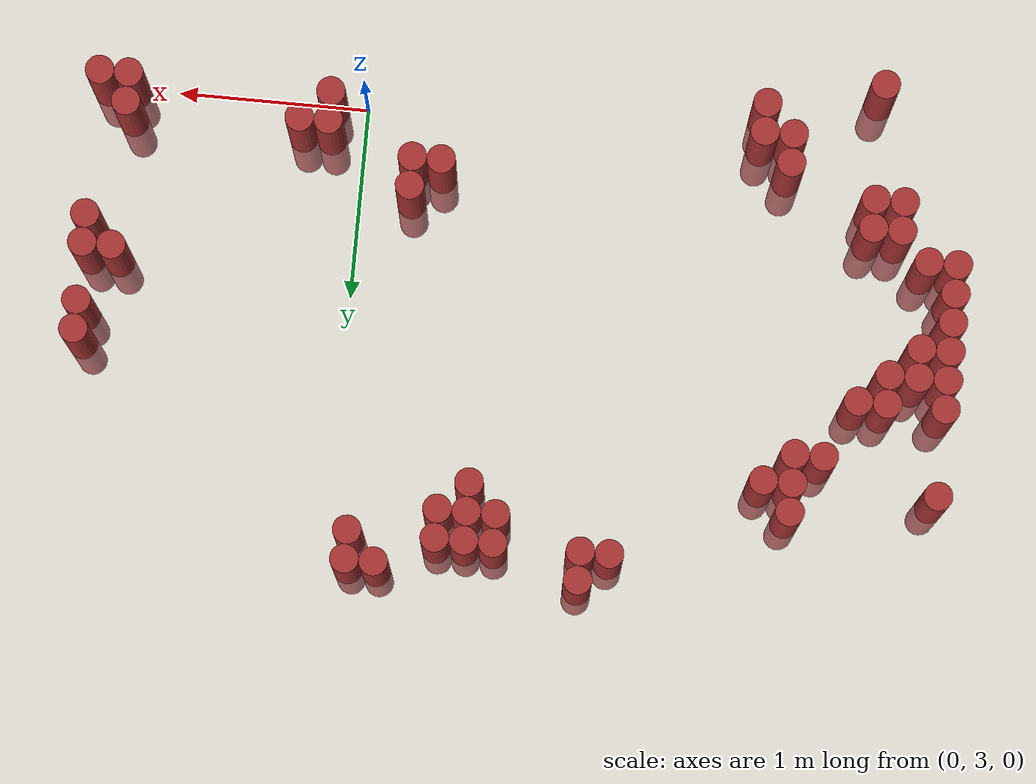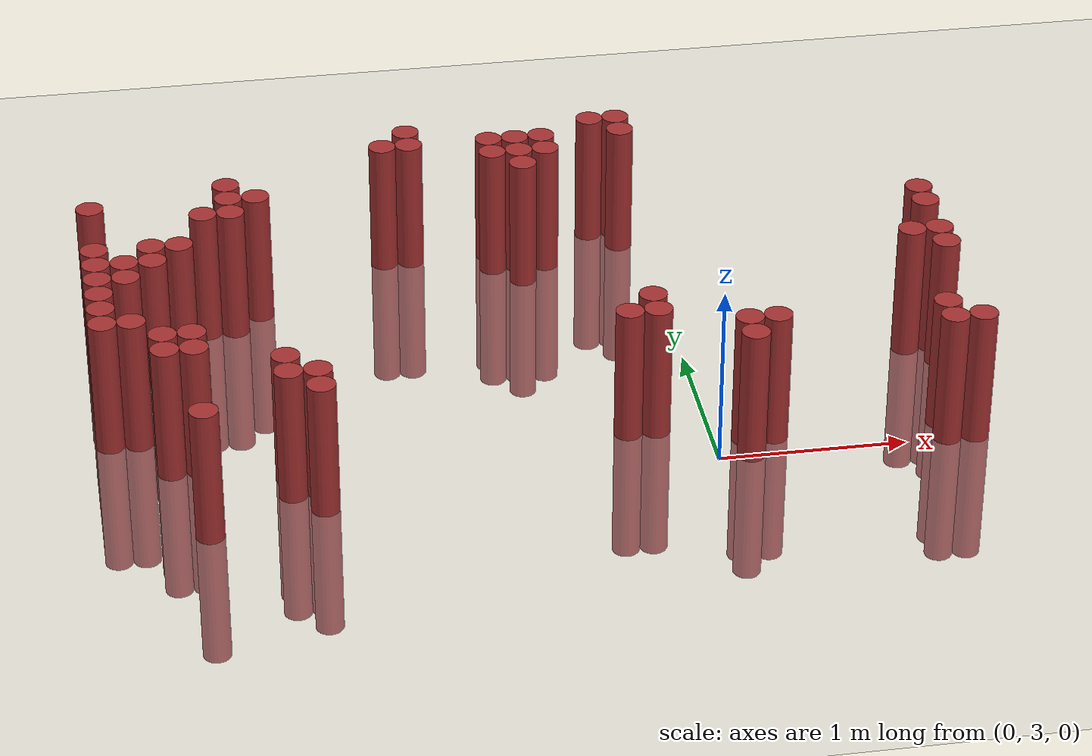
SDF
<sdf version="1.6">
 <world name="default">
  <model name="ground_plane">
   <static>1</static>
   <link name="link">
    <collision name="collision">
     <geometry><plane><normal>0 0 1</normal><size>100 100</size></plane></geometry>
     <surface><friction><ode><mu>100</mu><mu2>50</mu2></ode></friction></surface>
    </collision>
    <visual name="visual">
     <cast_shadows>0</cast_shadows>
     <geometry><plane><normal>0 0 1</normal><size>100 100</size></plane></geometry>
     <material>
      <script><uri>file://media/materials/scripts/gazebo.material</uri><name>Gazebo/Grey</name></script>
     </material>
    </visual>
   </link>
  </model>
  <model name="unit_cylinder_282">
   <static>1</static>
   <pose>-3.125000 3.625000 0.000000 0.000000 0.000000 0.000000</pose>
   <link name="link">
    <inertial>
     <mass>1</mass>
     <inertia><ixx>0.145833</ixx><ixy>0</ixy><ixz>0</ixz><iyy>0.145833</iyy><iyz>0</iyz><izz>0.125</izz></inertia>
    </inertial>
    <collision name="collision">
     <geometry><cylinder><radius>0.075000</radius><length>1.5</length></cylinder></geometry>
    </collision>
    <visual name="visual">
     <geometry><cylinder><radius>0.075000</radius><length>1.5</length></cylinder></geometry>
     <material>
      <ambient>0.648000 0.192000 0.192000 1</ambient>
      <diffuse>0.648000 0.192000 0.192000 1</diffuse>
     </material>
     <material>
      <script><name>Gazebo/Grey</name><uri>file://media/materials/scripts/gazebo.material</uri></script>
     </material>
    </visual>
   </link>
  </model>
  <model name="unit_cylinder_283">
   <static>1</static>
   <pose>-3.125000 3.775000 0.000000 0.000000 0.000000 0.000000</pose>
   <link name="link">
    <inertial>
     <mass>1</mass>
     <inertia><ixx>0.145833</ixx><ixy>0</ixy><ixz>0</ixz><iyy>0.145833</iyy><iyz>0</iyz><izz>0.125</izz></inertia>
    </inertial>
    <collision name="collision">
     <geometry><cylinder><radius>0.075000</radius><length>1.5</length></cylinder></geometry>
    </collision>
    <visual name="visual">
     <geometry><cylinder><radius>0.075000</radius><length>1.5</length></cylinder></geometry>
     <material>
      <ambient>0.648000 0.192000 0.192000 1</ambient>
      <diffuse>0.648000 0.192000 0.192000 1</diffuse>
     </material>
     <material>
      <script><name>Gazebo/Grey</name><uri>file://media/materials/scripts/gazebo.material</uri></script>
     </material>
    </visual>
   </link>
  </model>
  <model name="unit_cylinder_284">
   <static>1</static>
   <pose>-3.125000 3.925000 0.000000 0.000000 0.000000 0.000000</pose>
   <link name="link">
    <inertial>
     <mass>1</mass>
     <inertia><ixx>0.145833</ixx><ixy>0</ixy><ixz>0</ixz><iyy>0.145833</iyy><iyz>0</iyz><izz>0.125</izz></inertia>
    </inertial>
    <collision name="collision">
     <geometry><cylinder><radius>0.075000</radius><length>1.5</length></cylinder></geometry>
    </collision>
    <visual name="visual">
     <geometry><cylinder><radius>0.075000</radius><length>1.5</length></cylinder></geometry>
     <material>
      <ambient>0.648000 0.192000 0.192000 1</ambient>
      <diffuse>0.648000 0.192000 0.192000 1</diffuse>
     </material>
     <material>
      <script><name>Gazebo/Grey</name><uri>file://media/materials/scripts/gazebo.material</uri></script>
     </material>
    </visual>
   </link>
  </model>
  <model name="unit_cylinder_285">
   <static>1</static>
   <pose>-3.125000 4.075000 0.000000 0.000000 0.000000 0.000000</pose>
   <link name="link">
    <inertial>
     <mass>1</mass>
     <inertia><ixx>0.145833</ixx><ixy>0</ixy><ixz>0</ixz><iyy>0.145833</iyy><iyz>0</iyz><izz>0.125</izz></inertia>
    </inertial>
    <collision name="collision">
     <geometry><cylinder><radius>0.075000</radius><length>1.5</length></cylinder></geometry>
    </collision>
    <visual name="visual">
     <geometry><cylinder><radius>0.075000</radius><length>1.5</length></cylinder></geometry>
     <material>
      <ambient>0.648000 0.192000 0.192000 1</ambient>
      <diffuse>0.648000 0.192000 0.192000 1</diffuse>
     </material>
     <material>
      <script><name>Gazebo/Grey</name><uri>file://media/materials/scripts/gazebo.material</uri></script>
     </material>
    </visual>
   </link>
  </model>
  <model name="unit_cylinder_286">
   <static>1</static>
   <pose>-3.125000 4.225000 0.000000 0.000000 0.000000 0.000000</pose>
   <link name="link">
    <inertial>
     <mass>1</mass>
     <inertia><ixx>0.145833</ixx><ixy>0</ixy><ixz>0</ixz><iyy>0.145833</iyy><iyz>0</iyz><izz>0.125</izz></inertia>
    </inertial>
    <collision name="collision">
     <geometry><cylinder><radius>0.075000</radius><length>1.5</length></cylinder></geometry>
    </collision>
    <visual name="visual">
     <geometry><cylinder><radius>0.075000</radius><length>1.5</length></cylinder></geometry>
     <material>
      <ambient>0.648000 0.192000 0.192000 1</ambient>
      <diffuse>0.648000 0.192000 0.192000 1</diffuse>
     </material>
     <material>
      <script><name>Gazebo/Grey</name><uri>file://media/materials/scripts/gazebo.material</uri></script>
     </material>
    </visual>
   </link>
  </model>
  <model name="unit_cylinder_287">
   <static>1</static>
   <pose>-3.125000 4.375000 0.000000 0.000000 0.000000 0.000000</pose>
   <link name="link">
    <inertial>
     <mass>1</mass>
     <inertia><ixx>0.145833</ixx><ixy>0</ixy><ixz>0</ixz><iyy>0.145833</iyy><iyz>0</iyz><izz>0.125</izz></inertia>
    </inertial>
    <collision name="collision">
     <geometry><cylinder><radius>0.075000</radius><length>1.5</length></cylinder></geometry>
    </collision>
    <visual name="visual">
     <geometry><cylinder><radius>0.075000</radius><length>1.5</length></cylinder></geometry>
     <material>
      <ambient>0.648000 0.192000 0.192000 1</ambient>
      <diffuse>0.648000 0.192000 0.192000 1</diffuse>
     </material>
     <material>
      <script><name>Gazebo/Grey</name><uri>file://media/materials/scripts/gazebo.material</uri></script>
     </material>
    </visual>
   </link>
  </model>
  <model name="unit_cylinder_288">
   <static>1</static>
   <pose>-3.125000 4.825000 0.000000 0.000000 0.000000 0.000000</pose>
   <link name="link">
    <inertial>
     <mass>1</mass>
     <inertia><ixx>0.145833</ixx><ixy>0</ixy><ixz>0</ixz><iyy>0.145833</iyy><iyz>0</iyz><izz>0.125</izz></inertia>
    </inertial>
    <collision name="collision">
     <geometry><cylinder><radius>0.075000</radius><length>1.5</length></cylinder></geometry>
    </collision>
    <visual name="visual">
     <geometry><cylinder><radius>0.075000</radius><length>1.5</length></cylinder></geometry>
     <material>
      <ambient>0.648000 0.192000 0.192000 1</ambient>
      <diffuse>0.648000 0.192000 0.192000 1</diffuse>
     </material>
     <material>
      <script><name>Gazebo/Grey</name><uri>file://media/materials/scripts/gazebo.material</uri></script>
     </material>
    </visual>
   </link>
  </model>
  <model name="unit_cylinder_292">
   <static>1</static>
   <pose>-2.975000 3.625000 0.000000 0.000000 0.000000 0.000000</pose>
   <link name="link">
    <inertial>
     <mass>1</mass>
     <inertia><ixx>0.145833</ixx><ixy>0</ixy><ixz>0</ixz><iyy>0.145833</iyy><iyz>0</iyz><izz>0.125</izz></inertia>
    </inertial>
    <collision name="collision">
     <geometry><cylinder><radius>0.075000</radius><length>1.5</length></cylinder></geometry>
    </collision>
    <visual name="visual">
     <geometry><cylinder><radius>0.075000</radius><length>1.5</length></cylinder></geometry>
     <material>
      <ambient>0.648000 0.192000 0.192000 1</ambient>
      <diffuse>0.648000 0.192000 0.192000 1</diffuse>
     </material>
     <material>
      <script><name>Gazebo/Grey</name><uri>file://media/materials/scripts/gazebo.material</uri></script>
     </material>
    </visual>
   </link>
  </model>
  <model name="unit_cylinder_293">
   <static>1</static>
   <pose>-2.975000 4.075000 0.000000 0.000000 0.000000 0.000000</pose>
   <link name="link">
    <inertial>
     <mass>1</mass>
     <inertia><ixx>0.145833</ixx><ixy>0</ixy><ixz>0</ixz><iyy>0.145833</iyy><iyz>0</iyz><izz>0.125</izz></inertia>
    </inertial>
    <collision name="collision">
     <geometry><cylinder><radius>0.075000</radius><length>1.5</length></cylinder></geometry>
    </collision>
    <visual name="visual">
     <geometry><cylinder><radius>0.075000</radius><length>1.5</length></cylinder></geometry>
     <material>
      <ambient>0.648000 0.192000 0.192000 1</ambient>
      <diffuse>0.648000 0.192000 0.192000 1</diffuse>
     </material>
     <material>
      <script><name>Gazebo/Grey</name><uri>file://media/materials/scripts/gazebo.material</uri></script>
     </material>
    </visual>
   </link>
  </model>
  <model name="unit_cylinder_294">
   <static>1</static>
   <pose>-2.975000 4.225000 0.000000 0.000000 0.000000 0.000000</pose>
   <link name="link">
    <inertial>
     <mass>1</mass>
     <inertia><ixx>0.145833</ixx><ixy>0</ixy><ixz>0</ixz><iyy>0.145833</iyy><iyz>0</iyz><izz>0.125</izz></inertia>
    </inertial>
    <collision name="collision">
     <geometry><cylinder><radius>0.075000</radius><length>1.5</length></cylinder></geometry>
    </collision>
    <visual name="visual">
     <geometry><cylinder><radius>0.075000</radius><length>1.5</length></cylinder></geometry>
     <material>
      <ambient>0.648000 0.192000 0.192000 1</ambient>
      <diffuse>0.648000 0.192000 0.192000 1</diffuse>
     </material>
     <material>
      <script><name>Gazebo/Grey</name><uri>file://media/materials/scripts/gazebo.material</uri></script>
     </material>
    </visual>
   </link>
  </model>
  <model name="unit_cylinder_302">
   <static>1</static>
   <pose>-2.825000 3.325000 0.000000 0.000000 0.000000 0.000000</pose>
   <link name="link">
    <inertial>
     <mass>1</mass>
     <inertia><ixx>0.145833</ixx><ixy>0</ixy><ixz>0</ixz><iyy>0.145833</iyy><iyz>0</iyz><izz>0.125</izz></inertia>
    </inertial>
    <collision name="collision">
     <geometry><cylinder><radius>0.075000</radius><length>1.5</length></cylinder></geometry>
    </collision>
    <visual name="visual">
     <geometry><cylinder><radius>0.075000</radius><length>1.5</length></cylinder></geometry>
     <material>
      <ambient>0.648000 0.192000 0.192000 1</ambient>
      <diffuse>0.648000 0.192000 0.192000 1</diffuse>
     </material>
     <material>
      <script><name>Gazebo/Grey</name><uri>file://media/materials/scripts/gazebo.material</uri></script>
     </material>
    </visual>
   </link>
  </model>
  <model name="unit_cylinder_303">
   <static>1</static>
   <pose>-2.825000 3.475000 0.000000 0.000000 0.000000 0.000000</pose>
   <link name="link">
    <inertial>
     <mass>1</mass>
     <inertia><ixx>0.145833</ixx><ixy>0</ixy><ixz>0</ixz><iyy>0.145833</iyy><iyz>0</iyz><izz>0.125</izz></inertia>
    </inertial>
    <collision name="collision">
     <geometry><cylinder><radius>0.075000</radius><length>1.5</length></cylinder></geometry>
    </collision>
    <visual name="visual">
     <geometry><cylinder><radius>0.075000</radius><length>1.5</length></cylinder></geometry>
     <material>
      <ambient>0.648000 0.192000 0.192000 1</ambient>
      <diffuse>0.648000 0.192000 0.192000 1</diffuse>
     </material>
     <material>
      <script><name>Gazebo/Grey</name><uri>file://media/materials/scripts/gazebo.material</uri></script>
     </material>
    </visual>
   </link>
  </model>
  <model name="unit_cylinder_304">
   <static>1</static>
   <pose>-2.825000 4.225000 0.000000 0.000000 0.000000 0.000000</pose>
   <link name="link">
    <inertial>
     <mass>1</mass>
     <inertia><ixx>0.145833</ixx><ixy>0</ixy><ixz>0</ixz><iyy>0.145833</iyy><iyz>0</iyz><izz>0.125</izz></inertia>
    </inertial>
    <collision name="collision">
     <geometry><cylinder><radius>0.075000</radius><length>1.5</length></cylinder></geometry>
    </collision>
    <visual name="visual">
     <geometry><cylinder><radius>0.075000</radius><length>1.5</length></cylinder></geometry>
     <material>
      <ambient>0.648000 0.192000 0.192000 1</ambient>
      <diffuse>0.648000 0.192000 0.192000 1</diffuse>
     </material>
     <material>
      <script><name>Gazebo/Grey</name><uri>file://media/materials/scripts/gazebo.material</uri></script>
     </material>
    </visual>
   </link>
  </model>
  <model name="unit_cylinder_305">
   <static>1</static>
   <pose>-2.825000 4.375000 0.000000 0.000000 0.000000 0.000000</pose>
   <link name="link">
    <inertial>
     <mass>1</mass>
     <inertia><ixx>0.145833</ixx><ixy>0</ixy><ixz>0</ixz><iyy>0.145833</iyy><iyz>0</iyz><izz>0.125</izz></inertia>
    </inertial>
    <collision name="collision">
     <geometry><cylinder><radius>0.075000</radius><length>1.5</length></cylinder></geometry>
    </collision>
    <visual name="visual">
     <geometry><cylinder><radius>0.075000</radius><length>1.5</length></cylinder></geometry>
     <material>
      <ambient>0.648000 0.192000 0.192000 1</ambient>
      <diffuse>0.648000 0.192000 0.192000 1</diffuse>
     </material>
     <material>
      <script><name>Gazebo/Grey</name><uri>file://media/materials/scripts/gazebo.material</uri></script>
     </material>
    </visual>
   </link>
  </model>
  <model name="unit_cylinder_315">
   <static>1</static>
   <pose>-2.675000 2.725000 0.000000 0.000000 0.000000 0.000000</pose>
   <link name="link">
    <inertial>
     <mass>1</mass>
     <inertia><ixx>0.145833</ixx><ixy>0</ixy><ixz>0</ixz><iyy>0.145833</iyy><iyz>0</iyz><izz>0.125</izz></inertia>
    </inertial>
    <collision name="collision">
     <geometry><cylinder><radius>0.075000</radius><length>1.5</length></cylinder></geometry>
    </collision>
    <visual name="visual">
     <geometry><cylinder><radius>0.075000</radius><length>1.5</length></cylinder></geometry>
     <material>
      <ambient>0.648000 0.192000 0.192000 1</ambient>
      <diffuse>0.648000 0.192000 0.192000 1</diffuse>
     </material>
     <material>
      <script><name>Gazebo/Grey</name><uri>file://media/materials/scripts/gazebo.material</uri></script>
     </material>
    </visual>
   </link>
  </model>
  <model name="unit_cylinder_316">
   <static>1</static>
   <pose>-2.675000 3.325000 0.000000 0.000000 0.000000 0.000000</pose>
   <link name="link">
    <inertial>
     <mass>1</mass>
     <inertia><ixx>0.145833</ixx><ixy>0</ixy><ixz>0</ixz><iyy>0.145833</iyy><iyz>0</iyz><izz>0.125</izz></inertia>
    </inertial>
    <collision name="collision">
     <geometry><cylinder><radius>0.075000</radius><length>1.5</length></cylinder></geometry>
    </collision>
    <visual name="visual">
     <geometry><cylinder><radius>0.075000</radius><length>1.5</length></cylinder></geometry>
     <material>
      <ambient>0.648000 0.192000 0.192000 1</ambient>
      <diffuse>0.648000 0.192000 0.192000 1</diffuse>
     </material>
     <material>
      <script><name>Gazebo/Grey</name><uri>file://media/materials/scripts/gazebo.material</uri></script>
     </material>
    </visual>
   </link>
  </model>
  <model name="unit_cylinder_317">
   <static>1</static>
   <pose>-2.675000 3.475000 0.000000 0.000000 0.000000 0.000000</pose>
   <link name="link">
    <inertial>
     <mass>1</mass>
     <inertia><ixx>0.145833</ixx><ixy>0</ixy><ixz>0</ixz><iyy>0.145833</iyy><iyz>0</iyz><izz>0.125</izz></inertia>
    </inertial>
    <collision name="collision">
     <geometry><cylinder><radius>0.075000</radius><length>1.5</length></cylinder></geometry>
    </collision>
    <visual name="visual">
     <geometry><cylinder><radius>0.075000</radius><length>1.5</length></cylinder></geometry>
     <material>
      <ambient>0.648000 0.192000 0.192000 1</ambient>
      <diffuse>0.648000 0.192000 0.192000 1</diffuse>
     </material>
     <material>
      <script><name>Gazebo/Grey</name><uri>file://media/materials/scripts/gazebo.material</uri></script>
     </material>
    </visual>
   </link>
  </model>
  <model name="unit_cylinder_318">
   <static>1</static>
   <pose>-2.675000 4.375000 0.000000 0.000000 0.000000 0.000000</pose>
   <link name="link">
    <inertial>
     <mass>1</mass>
     <inertia><ixx>0.145833</ixx><ixy>0</ixy><ixz>0</ixz><iyy>0.145833</iyy><iyz>0</iyz><izz>0.125</izz></inertia>
    </inertial>
    <collision name="collision">
     <geometry><cylinder><radius>0.075000</radius><length>1.5</length></cylinder></geometry>
    </collision>
    <visual name="visual">
     <geometry><cylinder><radius>0.075000</radius><length>1.5</length></cylinder></geometry>
     <material>
      <ambient>0.648000 0.192000 0.192000 1</ambient>
      <diffuse>0.648000 0.192000 0.192000 1</diffuse>
     </material>
     <material>
      <script><name>Gazebo/Grey</name><uri>file://media/materials/scripts/gazebo.material</uri></script>
     </material>
    </visual>
   </link>
  </model>
  <model name="unit_cylinder_324">
   <static>1</static>
   <pose>-2.525000 4.675000 0.000000 0.000000 0.000000 0.000000</pose>
   <link name="link">
    <inertial>
     <mass>1</mass>
     <inertia><ixx>0.145833</ixx><ixy>0</ixy><ixz>0</ixz><iyy>0.145833</iyy><iyz>0</iyz><izz>0.125</izz></inertia>
    </inertial>
    <collision name="collision">
     <geometry><cylinder><radius>0.075000</radius><length>1.5</length></cylinder></geometry>
    </collision>
    <visual name="visual">
     <geometry><cylinder><radius>0.075000</radius><length>1.5</length></cylinder></geometry>
     <material>
      <ambient>0.648000 0.192000 0.192000 1</ambient>
      <diffuse>0.648000 0.192000 0.192000 1</diffuse>
     </material>
     <material>
      <script><name>Gazebo/Grey</name><uri>file://media/materials/scripts/gazebo.material</uri></script>
     </material>
    </visual>
   </link>
  </model>
  <model name="unit_cylinder_327">
   <static>1</static>
   <pose>-2.375000 4.675000 0.000000 0.000000 0.000000 0.000000</pose>
   <link name="link">
    <inertial>
     <mass>1</mass>
     <inertia><ixx>0.145833</ixx><ixy>0</ixy><ixz>0</ixz><iyy>0.145833</iyy><iyz>0</iyz><izz>0.125</izz></inertia>
    </inertial>
    <collision name="collision">
     <geometry><cylinder><radius>0.075000</radius><length>1.5</length></cylinder></geometry>
    </collision>
    <visual name="visual">
     <geometry><cylinder><radius>0.075000</radius><length>1.5</length></cylinder></geometry>
     <material>
      <ambient>0.648000 0.192000 0.192000 1</ambient>
      <diffuse>0.648000 0.192000 0.192000 1</diffuse>
     </material>
     <material>
      <script><name>Gazebo/Grey</name><uri>file://media/materials/scripts/gazebo.material</uri></script>
     </material>
    </visual>
   </link>
  </model>
  <model name="unit_cylinder_328">
   <static>1</static>
   <pose>-2.375000 4.825000 0.000000 0.000000 0.000000 0.000000</pose>
   <link name="link">
    <inertial>
     <mass>1</mass>
     <inertia><ixx>0.145833</ixx><ixy>0</ixy><ixz>0</ixz><iyy>0.145833</iyy><iyz>0</iyz><izz>0.125</izz></inertia>
    </inertial>
    <collision name="collision">
     <geometry><cylinder><radius>0.075000</radius><length>1.5</length></cylinder></geometry>
    </collision>
    <visual name="visual">
     <geometry><cylinder><radius>0.075000</radius><length>1.5</length></cylinder></geometry>
     <material>
      <ambient>0.648000 0.192000 0.192000 1</ambient>
      <diffuse>0.648000 0.192000 0.192000 1</diffuse>
     </material>
     <material>
      <script><name>Gazebo/Grey</name><uri>file://media/materials/scripts/gazebo.material</uri></script>
     </material>
    </visual>
   </link>
  </model>
  <model name="unit_cylinder_329">
   <static>1</static>
   <pose>-2.375000 4.975000 0.000000 0.000000 0.000000 0.000000</pose>
   <link name="link">
    <inertial>
     <mass>1</mass>
     <inertia><ixx>0.145833</ixx><ixy>0</ixy><ixz>0</ixz><iyy>0.145833</iyy><iyz>0</iyz><izz>0.125</izz></inertia>
    </inertial>
    <collision name="collision">
     <geometry><cylinder><radius>0.075000</radius><length>1.5</length></cylinder></geometry>
    </collision>
    <visual name="visual">
     <geometry><cylinder><radius>0.075000</radius><length>1.5</length></cylinder></geometry>
     <material>
      <ambient>0.648000 0.192000 0.192000 1</ambient>
      <diffuse>0.648000 0.192000 0.192000 1</diffuse>
     </material>
     <material>
      <script><name>Gazebo/Grey</name><uri>file://media/materials/scripts/gazebo.material</uri></script>
     </material>
    </visual>
   </link>
  </model>
  <model name="unit_cylinder_332">
   <static>1</static>
   <pose>-2.225000 3.025000 0.000000 0.000000 0.000000 0.000000</pose>
   <link name="link">
    <inertial>
     <mass>1</mass>
     <inertia><ixx>0.145833</ixx><ixy>0</ixy><ixz>0</ixz><iyy>0.145833</iyy><iyz>0</iyz><izz>0.125</izz></inertia>
    </inertial>
    <collision name="collision">
     <geometry><cylinder><radius>0.075000</radius><length>1.5</length></cylinder></geometry>
    </collision>
    <visual name="visual">
     <geometry><cylinder><radius>0.075000</radius><length>1.5</length></cylinder></geometry>
     <material>
      <ambient>0.648000 0.192000 0.192000 1</ambient>
      <diffuse>0.648000 0.192000 0.192000 1</diffuse>
     </material>
     <material>
      <script><name>Gazebo/Grey</name><uri>file://media/materials/scripts/gazebo.material</uri></script>
     </material>
    </visual>
   </link>
  </model>
  <model name="unit_cylinder_333">
   <static>1</static>
   <pose>-2.225000 3.175000 0.000000 0.000000 0.000000 0.000000</pose>
   <link name="link">
    <inertial>
     <mass>1</mass>
     <inertia><ixx>0.145833</ixx><ixy>0</ixy><ixz>0</ixz><iyy>0.145833</iyy><iyz>0</iyz><izz>0.125</izz></inertia>
    </inertial>
    <collision name="collision">
     <geometry><cylinder><radius>0.075000</radius><length>1.5</length></cylinder></geometry>
    </collision>
    <visual name="visual">
     <geometry><cylinder><radius>0.075000</radius><length>1.5</length></cylinder></geometry>
     <material>
      <ambient>0.648000 0.192000 0.192000 1</ambient>
      <diffuse>0.648000 0.192000 0.192000 1</diffuse>
     </material>
     <material>
      <script><name>Gazebo/Grey</name><uri>file://media/materials/scripts/gazebo.material</uri></script>
     </material>
    </visual>
   </link>
  </model>
  <model name="unit_cylinder_334">
   <static>1</static>
   <pose>-2.225000 4.825000 0.000000 0.000000 0.000000 0.000000</pose>
   <link name="link">
    <inertial>
     <mass>1</mass>
     <inertia><ixx>0.145833</ixx><ixy>0</ixy><ixz>0</ixz><iyy>0.145833</iyy><iyz>0</iyz><izz>0.125</izz></inertia>
    </inertial>
    <collision name="collision">
     <geometry><cylinder><radius>0.075000</radius><length>1.5</length></cylinder></geometry>
    </collision>
    <visual name="visual">
     <geometry><cylinder><radius>0.075000</radius><length>1.5</length></cylinder></geometry>
     <material>
      <ambient>0.648000 0.192000 0.192000 1</ambient>
      <diffuse>0.648000 0.192000 0.192000 1</diffuse>
     </material>
     <material>
      <script><name>Gazebo/Grey</name><uri>file://media/materials/scripts/gazebo.material</uri></script>
     </material>
    </visual>
   </link>
  </model>
  <model name="unit_cylinder_338">
   <static>1</static>
   <pose>-2.075000 2.875000 0.000000 0.000000 0.000000 0.000000</pose>
   <link name="link">
    <inertial>
     <mass>1</mass>
     <inertia><ixx>0.145833</ixx><ixy>0</ixy><ixz>0</ixz><iyy>0.145833</iyy><iyz>0</iyz><izz>0.125</izz></inertia>
    </inertial>
    <collision name="collision">
     <geometry><cylinder><radius>0.075000</radius><length>1.5</length></cylinder></geometry>
    </collision>
    <visual name="visual">
     <geometry><cylinder><radius>0.075000</radius><length>1.5</length></cylinder></geometry>
     <material>
      <ambient>0.648000 0.192000 0.192000 1</ambient>
      <diffuse>0.648000 0.192000 0.192000 1</diffuse>
     </material>
     <material>
      <script><name>Gazebo/Grey</name><uri>file://media/materials/scripts/gazebo.material</uri></script>
     </material>
    </visual>
   </link>
  </model>
  <model name="unit_cylinder_339">
   <static>1</static>
   <pose>-2.075000 3.025000 0.000000 0.000000 0.000000 0.000000</pose>
   <link name="link">
    <inertial>
     <mass>1</mass>
     <inertia><ixx>0.145833</ixx><ixy>0</ixy><ixz>0</ixz><iyy>0.145833</iyy><iyz>0</iyz><izz>0.125</izz></inertia>
    </inertial>
    <collision name="collision">
     <geometry><cylinder><radius>0.075000</radius><length>1.5</length></cylinder></geometry>
    </collision>
    <visual name="visual">
     <geometry><cylinder><radius>0.075000</radius><length>1.5</length></cylinder></geometry>
     <material>
      <ambient>0.648000 0.192000 0.192000 1</ambient>
      <diffuse>0.648000 0.192000 0.192000 1</diffuse>
     </material>
     <material>
      <script><name>Gazebo/Grey</name><uri>file://media/materials/scripts/gazebo.material</uri></script>
     </material>
    </visual>
   </link>
  </model>
  <model name="unit_cylinder_352">
   <static>1</static>
   <pose>-1.475000 5.275000 0.000000 0.000000 0.000000 0.000000</pose>
   <link name="link">
    <inertial>
     <mass>1</mass>
     <inertia><ixx>0.145833</ixx><ixy>0</ixy><ixz>0</ixz><iyy>0.145833</iyy><iyz>0</iyz><izz>0.125</izz></inertia>
    </inertial>
    <collision name="collision">
     <geometry><cylinder><radius>0.075000</radius><length>1.5</length></cylinder></geometry>
    </collision>
    <visual name="visual">
     <geometry><cylinder><radius>0.075000</radius><length>1.5</length></cylinder></geometry>
     <material>
      <ambient>0.648000 0.192000 0.192000 1</ambient>
      <diffuse>0.648000 0.192000 0.192000 1</diffuse>
     </material>
     <material>
      <script><name>Gazebo/Grey</name><uri>file://media/materials/scripts/gazebo.material</uri></script>
     </material>
    </visual>
   </link>
  </model>
  <model name="unit_cylinder_353">
   <static>1</static>
   <pose>-1.325000 5.275000 0.000000 0.000000 0.000000 0.000000</pose>
   <link name="link">
    <inertial>
     <mass>1</mass>
     <inertia><ixx>0.145833</ixx><ixy>0</ixy><ixz>0</ixz><iyy>0.145833</iyy><iyz>0</iyz><izz>0.125</izz></inertia>
    </inertial>
    <collision name="collision">
     <geometry><cylinder><radius>0.075000</radius><length>1.5</length></cylinder></geometry>
    </collision>
    <visual name="visual">
     <geometry><cylinder><radius>0.075000</radius><length>1.5</length></cylinder></geometry>
     <material>
      <ambient>0.648000 0.192000 0.192000 1</ambient>
      <diffuse>0.648000 0.192000 0.192000 1</diffuse>
     </material>
     <material>
      <script><name>Gazebo/Grey</name><uri>file://media/materials/scripts/gazebo.material</uri></script>
     </material>
    </visual>
   </link>
  </model>
  <model name="unit_cylinder_354">
   <static>1</static>
   <pose>-1.325000 5.425000 0.000000 0.000000 0.000000 0.000000</pose>
   <link name="link">
    <inertial>
     <mass>1</mass>
     <inertia><ixx>0.145833</ixx><ixy>0</ixy><ixz>0</ixz><iyy>0.145833</iyy><iyz>0</iyz><izz>0.125</izz></inertia>
    </inertial>
    <collision name="collision">
     <geometry><cylinder><radius>0.075000</radius><length>1.5</length></cylinder></geometry>
    </collision>
    <visual name="visual">
     <geometry><cylinder><radius>0.075000</radius><length>1.5</length></cylinder></geometry>
     <material>
      <ambient>0.648000 0.192000 0.192000 1</ambient>
      <diffuse>0.648000 0.192000 0.192000 1</diffuse>
     </material>
     <material>
      <script><name>Gazebo/Grey</name><uri>file://media/materials/scripts/gazebo.material</uri></script>
     </material>
    </visual>
   </link>
  </model>
  <model name="unit_cylinder_355">
   <static>1</static>
   <pose>-0.875000 5.125000 0.000000 0.000000 0.000000 0.000000</pose>
   <link name="link">
    <inertial>
     <mass>1</mass>
     <inertia><ixx>0.145833</ixx><ixy>0</ixy><ixz>0</ixz><iyy>0.145833</iyy><iyz>0</iyz><izz>0.125</izz></inertia>
    </inertial>
    <collision name="collision">
     <geometry><cylinder><radius>0.075000</radius><length>1.5</length></cylinder></geometry>
    </collision>
    <visual name="visual">
     <geometry><cylinder><radius>0.075000</radius><length>1.5</length></cylinder></geometry>
     <material>
      <ambient>0.648000 0.192000 0.192000 1</ambient>
      <diffuse>0.648000 0.192000 0.192000 1</diffuse>
     </material>
     <material>
      <script><name>Gazebo/Grey</name><uri>file://media/materials/scripts/gazebo.material</uri></script>
     </material>
    </visual>
   </link>
  </model>
  <model name="unit_cylinder_356">
   <static>1</static>
   <pose>-0.875000 5.275000 0.000000 0.000000 0.000000 0.000000</pose>
   <link name="link">
    <inertial>
     <mass>1</mass>
     <inertia><ixx>0.145833</ixx><ixy>0</ixy><ixz>0</ixz><iyy>0.145833</iyy><iyz>0</iyz><izz>0.125</izz></inertia>
    </inertial>
    <collision name="collision">
     <geometry><cylinder><radius>0.075000</radius><length>1.5</length></cylinder></geometry>
    </collision>
    <visual name="visual">
     <geometry><cylinder><radius>0.075000</radius><length>1.5</length></cylinder></geometry>
     <material>
      <ambient>0.648000 0.192000 0.192000 1</ambient>
      <diffuse>0.648000 0.192000 0.192000 1</diffuse>
     </material>
     <material>
      <script><name>Gazebo/Grey</name><uri>file://media/materials/scripts/gazebo.material</uri></script>
     </material>
    </visual>
   </link>
  </model>
  <model name="unit_cylinder_358">
   <static>1</static>
   <pose>-0.725000 4.975000 0.000000 0.000000 0.000000 0.000000</pose>
   <link name="link">
    <inertial>
     <mass>1</mass>
     <inertia><ixx>0.145833</ixx><ixy>0</ixy><ixz>0</ixz><iyy>0.145833</iyy><iyz>0</iyz><izz>0.125</izz></inertia>
    </inertial>
    <collision name="collision">
     <geometry><cylinder><radius>0.075000</radius><length>1.5</length></cylinder></geometry>
    </collision>
    <visual name="visual">
     <geometry><cylinder><radius>0.075000</radius><length>1.5</length></cylinder></geometry>
     <material>
      <ambient>0.648000 0.192000 0.192000 1</ambient>
      <diffuse>0.648000 0.192000 0.192000 1</diffuse>
     </material>
     <material>
      <script><name>Gazebo/Grey</name><uri>file://media/materials/scripts/gazebo.material</uri></script>
     </material>
    </visual>
   </link>
  </model>
  <model name="unit_cylinder_359">
   <static>1</static>
   <pose>-0.725000 5.125000 0.000000 0.000000 0.000000 0.000000</pose>
   <link name="link">
    <inertial>
     <mass>1</mass>
     <inertia><ixx>0.145833</ixx><ixy>0</ixy><ixz>0</ixz><iyy>0.145833</iyy><iyz>0</iyz><izz>0.125</izz></inertia>
    </inertial>
    <collision name="collision">
     <geometry><cylinder><radius>0.075000</radius><length>1.5</length></cylinder></geometry>
    </collision>
    <visual name="visual">
     <geometry><cylinder><radius>0.075000</radius><length>1.5</length></cylinder></geometry>
     <material>
      <ambient>0.648000 0.192000 0.192000 1</ambient>
      <diffuse>0.648000 0.192000 0.192000 1</diffuse>
     </material>
     <material>
      <script><name>Gazebo/Grey</name><uri>file://media/materials/scripts/gazebo.material</uri></script>
     </material>
    </visual>
   </link>
  </model>
  <model name="unit_cylinder_360">
   <static>1</static>
   <pose>-0.725000 5.275000 0.000000 0.000000 0.000000 0.000000</pose>
   <link name="link">
    <inertial>
     <mass>1</mass>
     <inertia><ixx>0.145833</ixx><ixy>0</ixy><ixz>0</ixz><iyy>0.145833</iyy><iyz>0</iyz><izz>0.125</izz></inertia>
    </inertial>
    <collision name="collision">
     <geometry><cylinder><radius>0.075000</radius><length>1.5</length></cylinder></geometry>
    </collision>
    <visual name="visual">
     <geometry><cylinder><radius>0.075000</radius><length>1.5</length></cylinder></geometry>
     <material>
      <ambient>0.648000 0.192000 0.192000 1</ambient>
      <diffuse>0.648000 0.192000 0.192000 1</diffuse>
     </material>
     <material>
      <script><name>Gazebo/Grey</name><uri>file://media/materials/scripts/gazebo.material</uri></script>
     </material>
    </visual>
   </link>
  </model>
  <model name="unit_cylinder_363">
   <static>1</static>
   <pose>-0.575000 5.125000 0.000000 0.000000 0.000000 0.000000</pose>
   <link name="link">
    <inertial>
     <mass>1</mass>
     <inertia><ixx>0.145833</ixx><ixy>0</ixy><ixz>0</ixz><iyy>0.145833</iyy><iyz>0</iyz><izz>0.125</izz></inertia>
    </inertial>
    <collision name="collision">
     <geometry><cylinder><radius>0.075000</radius><length>1.5</length></cylinder></geometry>
    </collision>
    <visual name="visual">
     <geometry><cylinder><radius>0.075000</radius><length>1.5</length></cylinder></geometry>
     <material>
      <ambient>0.648000 0.192000 0.192000 1</ambient>
      <diffuse>0.648000 0.192000 0.192000 1</diffuse>
     </material>
     <material>
      <script><name>Gazebo/Grey</name><uri>file://media/materials/scripts/gazebo.material</uri></script>
     </material>
    </visual>
   </link>
  </model>
  <model name="unit_cylinder_364">
   <static>1</static>
   <pose>-0.575000 5.275000 0.000000 0.000000 0.000000 0.000000</pose>
   <link name="link">
    <inertial>
     <mass>1</mass>
     <inertia><ixx>0.145833</ixx><ixy>0</ixy><ixz>0</ixz><iyy>0.145833</iyy><iyz>0</iyz><izz>0.125</izz></inertia>
    </inertial>
    <collision name="collision">
     <geometry><cylinder><radius>0.075000</radius><length>1.5</length></cylinder></geometry>
    </collision>
    <visual name="visual">
     <geometry><cylinder><radius>0.075000</radius><length>1.5</length></cylinder></geometry>
     <material>
      <ambient>0.648000 0.192000 0.192000 1</ambient>
      <diffuse>0.648000 0.192000 0.192000 1</diffuse>
     </material>
     <material>
      <script><name>Gazebo/Grey</name><uri>file://media/materials/scripts/gazebo.material</uri></script>
     </material>
    </visual>
   </link>
  </model>
  <model name="unit_cylinder_365">
   <static>1</static>
   <pose>-0.425000 3.325000 0.000000 0.000000 0.000000 0.000000</pose>
   <link name="link">
    <inertial>
     <mass>1</mass>
     <inertia><ixx>0.145833</ixx><ixy>0</ixy><ixz>0</ixz><iyy>0.145833</iyy><iyz>0</iyz><izz>0.125</izz></inertia>
    </inertial>
    <collision name="collision">
     <geometry><cylinder><radius>0.075000</radius><length>1.5</length></cylinder></geometry>
    </collision>
    <visual name="visual">
     <geometry><cylinder><radius>0.075000</radius><length>1.5</length></cylinder></geometry>
     <material>
      <ambient>0.648000 0.192000 0.192000 1</ambient>
      <diffuse>0.648000 0.192000 0.192000 1</diffuse>
     </material>
     <material>
      <script><name>Gazebo/Grey</name><uri>file://media/materials/scripts/gazebo.material</uri></script>
     </material>
    </visual>
   </link>
  </model>
  <model name="unit_cylinder_366">
   <static>1</static>
   <pose>-0.275000 3.325000 0.000000 0.000000 0.000000 0.000000</pose>
   <link name="link">
    <inertial>
     <mass>1</mass>
     <inertia><ixx>0.145833</ixx><ixy>0</ixy><ixz>0</ixz><iyy>0.145833</iyy><iyz>0</iyz><izz>0.125</izz></inertia>
    </inertial>
    <collision name="collision">
     <geometry><cylinder><radius>0.075000</radius><length>1.5</length></cylinder></geometry>
    </collision>
    <visual name="visual">
     <geometry><cylinder><radius>0.075000</radius><length>1.5</length></cylinder></geometry>
     <material>
      <ambient>0.648000 0.192000 0.192000 1</ambient>
      <diffuse>0.648000 0.192000 0.192000 1</diffuse>
     </material>
     <material>
      <script><name>Gazebo/Grey</name><uri>file://media/materials/scripts/gazebo.material</uri></script>
     </material>
    </visual>
   </link>
  </model>
  <model name="unit_cylinder_367">
   <static>1</static>
   <pose>-0.275000 3.475000 0.000000 0.000000 0.000000 0.000000</pose>
   <link name="link">
    <inertial>
     <mass>1</mass>
     <inertia><ixx>0.145833</ixx><ixy>0</ixy><ixz>0</ixz><iyy>0.145833</iyy><iyz>0</iyz><izz>0.125</izz></inertia>
    </inertial>
    <collision name="collision">
     <geometry><cylinder><radius>0.075000</radius><length>1.5</length></cylinder></geometry>
    </collision>
    <visual name="visual">
     <geometry><cylinder><radius>0.075000</radius><length>1.5</length></cylinder></geometry>
     <material>
      <ambient>0.648000 0.192000 0.192000 1</ambient>
      <diffuse>0.648000 0.192000 0.192000 1</diffuse>
     </material>
     <material>
      <script><name>Gazebo/Grey</name><uri>file://media/materials/scripts/gazebo.material</uri></script>
     </material>
    </visual>
   </link>
  </model>
  <model name="unit_cylinder_368">
   <static>1</static>
   <pose>-0.275000 5.425000 0.000000 0.000000 0.000000 0.000000</pose>
   <link name="link">
    <inertial>
     <mass>1</mass>
     <inertia><ixx>0.145833</ixx><ixy>0</ixy><ixz>0</ixz><iyy>0.145833</iyy><iyz>0</iyz><izz>0.125</izz></inertia>
    </inertial>
    <collision name="collision">
     <geometry><cylinder><radius>0.075000</radius><length>1.5</length></cylinder></geometry>
    </collision>
    <visual name="visual">
     <geometry><cylinder><radius>0.075000</radius><length>1.5</length></cylinder></geometry>
     <material>
      <ambient>0.648000 0.192000 0.192000 1</ambient>
      <diffuse>0.648000 0.192000 0.192000 1</diffuse>
     </material>
     <material>
      <script><name>Gazebo/Grey</name><uri>file://media/materials/scripts/gazebo.material</uri></script>
     </material>
    </visual>
   </link>
  </model>
  <model name="unit_cylinder_369">
   <static>1</static>
   <pose>-0.125000 5.275000 0.000000 0.000000 0.000000 0.000000</pose>
   <link name="link">
    <inertial>
     <mass>1</mass>
     <inertia><ixx>0.145833</ixx><ixy>0</ixy><ixz>0</ixz><iyy>0.145833</iyy><iyz>0</iyz><izz>0.125</izz></inertia>
    </inertial>
    <collision name="collision">
     <geometry><cylinder><radius>0.075000</radius><length>1.5</length></cylinder></geometry>
    </collision>
    <visual name="visual">
     <geometry><cylinder><radius>0.075000</radius><length>1.5</length></cylinder></geometry>
     <material>
      <ambient>0.648000 0.192000 0.192000 1</ambient>
      <diffuse>0.648000 0.192000 0.192000 1</diffuse>
     </material>
     <material>
      <script><name>Gazebo/Grey</name><uri>file://media/materials/scripts/gazebo.material</uri></script>
     </material>
    </visual>
   </link>
  </model>
  <model name="unit_cylinder_370">
   <static>1</static>
   <pose>-0.125000 5.425000 0.000000 0.000000 0.000000 0.000000</pose>
   <link name="link">
    <inertial>
     <mass>1</mass>
     <inertia><ixx>0.145833</ixx><ixy>0</ixy><ixz>0</ixz><iyy>0.145833</iyy><iyz>0</iyz><izz>0.125</izz></inertia>
    </inertial>
    <collision name="collision">
     <geometry><cylinder><radius>0.075000</radius><length>1.5</length></cylinder></geometry>
    </collision>
    <visual name="visual">
     <geometry><cylinder><radius>0.075000</radius><length>1.5</length></cylinder></geometry>
     <material>
      <ambient>0.648000 0.192000 0.192000 1</ambient>
      <diffuse>0.648000 0.192000 0.192000 1</diffuse>
     </material>
     <material>
      <script><name>Gazebo/Grey</name><uri>file://media/materials/scripts/gazebo.material</uri></script>
     </material>
    </visual>
   </link>
  </model>
  <model name="unit_cylinder_382">
   <static>1</static>
   <pose>0.175000 3.025000 0.000000 0.000000 0.000000 0.000000</pose>
   <link name="link">
    <inertial>
     <mass>1</mass>
     <inertia><ixx>0.145833</ixx><ixy>0</ixy><ixz>0</ixz><iyy>0.145833</iyy><iyz>0</iyz><izz>0.125</izz></inertia>
    </inertial>
    <collision name="collision">
     <geometry><cylinder><radius>0.075000</radius><length>1.5</length></cylinder></geometry>
    </collision>
    <visual name="visual">
     <geometry><cylinder><radius>0.075000</radius><length>1.5</length></cylinder></geometry>
     <material>
      <ambient>0.648000 0.192000 0.192000 1</ambient>
      <diffuse>0.648000 0.192000 0.192000 1</diffuse>
     </material>
     <material>
      <script><name>Gazebo/Grey</name><uri>file://media/materials/scripts/gazebo.material</uri></script>
     </material>
    </visual>
   </link>
  </model>
  <model name="unit_cylinder_383">
   <static>1</static>
   <pose>0.175000 3.175000 0.000000 0.000000 0.000000 0.000000</pose>
   <link name="link">
    <inertial>
     <mass>1</mass>
     <inertia><ixx>0.145833</ixx><ixy>0</ixy><ixz>0</ixz><iyy>0.145833</iyy><iyz>0</iyz><izz>0.125</izz></inertia>
    </inertial>
    <collision name="collision">
     <geometry><cylinder><radius>0.075000</radius><length>1.5</length></cylinder></geometry>
    </collision>
    <visual name="visual">
     <geometry><cylinder><radius>0.075000</radius><length>1.5</length></cylinder></geometry>
     <material>
      <ambient>0.648000 0.192000 0.192000 1</ambient>
      <diffuse>0.648000 0.192000 0.192000 1</diffuse>
     </material>
     <material>
      <script><name>Gazebo/Grey</name><uri>file://media/materials/scripts/gazebo.material</uri></script>
     </material>
    </visual>
   </link>
  </model>
  <model name="unit_cylinder_390">
   <static>1</static>
   <pose>0.325000 3.175000 0.000000 0.000000 0.000000 0.000000</pose>
   <link name="link">
    <inertial>
     <mass>1</mass>
     <inertia><ixx>0.145833</ixx><ixy>0</ixy><ixz>0</ixz><iyy>0.145833</iyy><iyz>0</iyz><izz>0.125</izz></inertia>
    </inertial>
    <collision name="collision">
     <geometry><cylinder><radius>0.075000</radius><length>1.5</length></cylinder></geometry>
    </collision>
    <visual name="visual">
     <geometry><cylinder><radius>0.075000</radius><length>1.5</length></cylinder></geometry>
     <material>
      <ambient>0.648000 0.192000 0.192000 1</ambient>
      <diffuse>0.648000 0.192000 0.192000 1</diffuse>
     </material>
     <material>
      <script><name>Gazebo/Grey</name><uri>file://media/materials/scripts/gazebo.material</uri></script>
     </material>
    </visual>
   </link>
  </model>
  <model name="unit_cylinder_421">
   <static>1</static>
   <pose>1.225000 3.025000 0.000000 0.000000 0.000000 0.000000</pose>
   <link name="link">
    <inertial>
     <mass>1</mass>
     <inertia><ixx>0.145833</ixx><ixy>0</ixy><ixz>0</ixz><iyy>0.145833</iyy><iyz>0</iyz><izz>0.125</izz></inertia>
    </inertial>
    <collision name="collision">
     <geometry><cylinder><radius>0.075000</radius><length>1.5</length></cylinder></geometry>
    </collision>
    <visual name="visual">
     <geometry><cylinder><radius>0.075000</radius><length>1.5</length></cylinder></geometry>
     <material>
      <ambient>0.648000 0.192000 0.192000 1</ambient>
      <diffuse>0.648000 0.192000 0.192000 1</diffuse>
     </material>
     <material>
      <script><name>Gazebo/Grey</name><uri>file://media/materials/scripts/gazebo.material</uri></script>
     </material>
    </visual>
   </link>
  </model>
  <model name="unit_cylinder_422">
   <static>1</static>
   <pose>1.225000 3.175000 0.000000 0.000000 0.000000 0.000000</pose>
   <link name="link">
    <inertial>
     <mass>1</mass>
     <inertia><ixx>0.145833</ixx><ixy>0</ixy><ixz>0</ixz><iyy>0.145833</iyy><iyz>0</iyz><izz>0.125</izz></inertia>
    </inertial>
    <collision name="collision">
     <geometry><cylinder><radius>0.075000</radius><length>1.5</length></cylinder></geometry>
    </collision>
    <visual name="visual">
     <geometry><cylinder><radius>0.075000</radius><length>1.5</length></cylinder></geometry>
     <material>
      <ambient>0.648000 0.192000 0.192000 1</ambient>
      <diffuse>0.648000 0.192000 0.192000 1</diffuse>
     </material>
     <material>
      <script><name>Gazebo/Grey</name><uri>file://media/materials/scripts/gazebo.material</uri></script>
     </material>
    </visual>
   </link>
  </model>
  <model name="unit_cylinder_423">
   <static>1</static>
   <pose>1.225000 3.925000 0.000000 0.000000 0.000000 0.000000</pose>
   <link name="link">
    <inertial>
     <mass>1</mass>
     <inertia><ixx>0.145833</ixx><ixy>0</ixy><ixz>0</ixz><iyy>0.145833</iyy><iyz>0</iyz><izz>0.125</izz></inertia>
    </inertial>
    <collision name="collision">
     <geometry><cylinder><radius>0.075000</radius><length>1.5</length></cylinder></geometry>
    </collision>
    <visual name="visual">
     <geometry><cylinder><radius>0.075000</radius><length>1.5</length></cylinder></geometry>
     <material>
      <ambient>0.648000 0.192000 0.192000 1</ambient>
      <diffuse>0.648000 0.192000 0.192000 1</diffuse>
     </material>
     <material>
      <script><name>Gazebo/Grey</name><uri>file://media/materials/scripts/gazebo.material</uri></script>
     </material>
    </visual>
   </link>
  </model>
  <model name="unit_cylinder_435">
   <static>1</static>
   <pose>1.375000 3.025000 0.000000 0.000000 0.000000 0.000000</pose>
   <link name="link">
    <inertial>
     <mass>1</mass>
     <inertia><ixx>0.145833</ixx><ixy>0</ixy><ixz>0</ixz><iyy>0.145833</iyy><iyz>0</iyz><izz>0.125</izz></inertia>
    </inertial>
    <collision name="collision">
     <geometry><cylinder><radius>0.075000</radius><length>1.5</length></cylinder></geometry>
    </collision>
    <visual name="visual">
     <geometry><cylinder><radius>0.075000</radius><length>1.5</length></cylinder></geometry>
     <material>
      <ambient>0.648000 0.192000 0.192000 1</ambient>
      <diffuse>0.648000 0.192000 0.192000 1</diffuse>
     </material>
     <material>
      <script><name>Gazebo/Grey</name><uri>file://media/materials/scripts/gazebo.material</uri></script>
     </material>
    </visual>
   </link>
  </model>
  <model name="unit_cylinder_436">
   <static>1</static>
   <pose>1.375000 3.775000 0.000000 0.000000 0.000000 0.000000</pose>
   <link name="link">
    <inertial>
     <mass>1</mass>
     <inertia><ixx>0.145833</ixx><ixy>0</ixy><ixz>0</ixz><iyy>0.145833</iyy><iyz>0</iyz><izz>0.125</izz></inertia>
    </inertial>
    <collision name="collision">
     <geometry><cylinder><radius>0.075000</radius><length>1.5</length></cylinder></geometry>
    </collision>
    <visual name="visual">
     <geometry><cylinder><radius>0.075000</radius><length>1.5</length></cylinder></geometry>
     <material>
      <ambient>0.648000 0.192000 0.192000 1</ambient>
      <diffuse>0.648000 0.192000 0.192000 1</diffuse>
     </material>
     <material>
      <script><name>Gazebo/Grey</name><uri>file://media/materials/scripts/gazebo.material</uri></script>
     </material>
    </visual>
   </link>
  </model>
  <model name="unit_cylinder_437">
   <static>1</static>
   <pose>1.375000 3.925000 0.000000 0.000000 0.000000 0.000000</pose>
   <link name="link">
    <inertial>
     <mass>1</mass>
     <inertia><ixx>0.145833</ixx><ixy>0</ixy><ixz>0</ixz><iyy>0.145833</iyy><iyz>0</iyz><izz>0.125</izz></inertia>
    </inertial>
    <collision name="collision">
     <geometry><cylinder><radius>0.075000</radius><length>1.5</length></cylinder></geometry>
    </collision>
    <visual name="visual">
     <geometry><cylinder><radius>0.075000</radius><length>1.5</length></cylinder></geometry>
     <material>
      <ambient>0.648000 0.192000 0.192000 1</ambient>
      <diffuse>0.648000 0.192000 0.192000 1</diffuse>
     </material>
     <material>
      <script><name>Gazebo/Grey</name><uri>file://media/materials/scripts/gazebo.material</uri></script>
     </material>
    </visual>
   </link>
  </model>
  <model name="unit_cylinder_438">
   <static>1</static>
   <pose>1.375000 4.225000 0.000000 0.000000 0.000000 0.000000</pose>
   <link name="link">
    <inertial>
     <mass>1</mass>
     <inertia><ixx>0.145833</ixx><ixy>0</ixy><ixz>0</ixz><iyy>0.145833</iyy><iyz>0</iyz><izz>0.125</izz></inertia>
    </inertial>
    <collision name="collision">
     <geometry><cylinder><radius>0.075000</radius><length>1.5</length></cylinder></geometry>
    </collision>
    <visual name="visual">
     <geometry><cylinder><radius>0.075000</radius><length>1.5</length></cylinder></geometry>
     <material>
      <ambient>0.648000 0.192000 0.192000 1</ambient>
      <diffuse>0.648000 0.192000 0.192000 1</diffuse>
     </material>
     <material>
      <script><name>Gazebo/Grey</name><uri>file://media/materials/scripts/gazebo.material</uri></script>
     </material>
    </visual>
   </link>
  </model>
  <model name="unit_cylinder_439">
   <static>1</static>
   <pose>1.375000 4.375000 0.000000 0.000000 0.000000 0.000000</pose>
   <link name="link">
    <inertial>
     <mass>1</mass>
     <inertia><ixx>0.145833</ixx><ixy>0</ixy><ixz>0</ixz><iyy>0.145833</iyy><iyz>0</iyz><izz>0.125</izz></inertia>
    </inertial>
    <collision name="collision">
     <geometry><cylinder><radius>0.075000</radius><length>1.5</length></cylinder></geometry>
    </collision>
    <visual name="visual">
     <geometry><cylinder><radius>0.075000</radius><length>1.5</length></cylinder></geometry>
     <material>
      <ambient>0.648000 0.192000 0.192000 1</ambient>
      <diffuse>0.648000 0.192000 0.192000 1</diffuse>
     </material>
     <material>
      <script><name>Gazebo/Grey</name><uri>file://media/materials/scripts/gazebo.material</uri></script>
     </material>
    </visual>
   </link>
  </model>
 </world>
</sdf>
